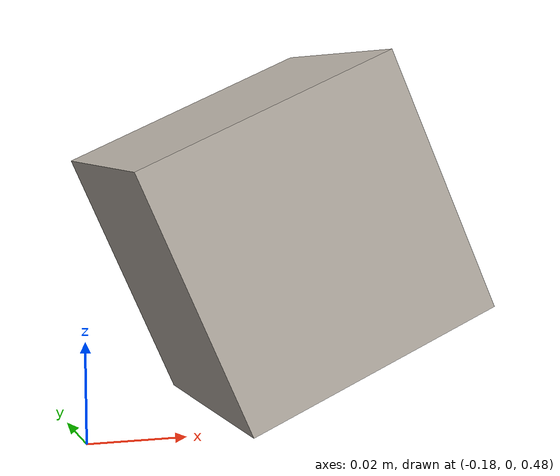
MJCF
<mujoco>

  <compiler assetdir=".."/>

  <default>
    <default class="cube">
      <geom friction=".3" conaffinity="2" condim="3" priority="0"
            solref="0.015 1.0" solimp="0.85 0.85 0.001"/>
    </default>
  </default>

  <asset>
    <texture name="cube" type="cube" fileup="textures/fileup.png"
      fileback="textures/fileback.png" filedown="textures/filedown.png"
      filefront="textures/filefront.png" fileleft="textures/fileleft.png"
      fileright="textures/fileright.png"/>
    <material name="cube" texture="cube"/>
    <texture name="graycube" type="cube" fileup="textures/grayup.png"
      fileback="textures/grayback.png" filedown="textures/graydown.png"
      filefront="textures/grayfront.png" fileleft="textures/grayleft.png"
      fileright="textures/grayright.png"/>
    <material name="graycube" texture="graycube"/>
    <texture name="dexcube" type="2d" file="textures/dex_cube.png"/>
    <material name="dexcube" texture="dexcube"/>
    <texture name="arucocube" type="cube"
      fileright="textures/RIGHT_purple.png" fileleft="textures/LEFT_blue.png"
      fileup="textures/TOP_red.png" filedown="textures/BOTTOM_cyan.png"
      filefront="textures/FRONT_green.png" fileback="textures/BACK_black.png"/>
    <material name="arucocube" texture="arucocube"/>
    <mesh name="cube_mesh" file="meshes/dex_cube.obj" scale="0.027 0.027 0.027"/>
  </asset>

  <worldbody>
    <body name="cube" pos="-0.1404 0.0042 0.52" quat="0.3894 -0.3796 -0.5980 -0.5888" childclass="cube">
      <freejoint name="cube_freejoint"/>
      <!-- Visual is a BOX (not the dex_cube mesh): a type="cube" texture maps by
           face direction and only renders correctly on a box; the dex_cube.obj
           mesh's 2D UVs scramble it. -->
      <geom name="cube_visual" type="box" size=".027 .027 .027" material="arucocube" contype="0" conaffinity="0" density="0" group="2"/>
      <geom name="cube" type="box" size=".027 .027 .027" mass=".120" group="3"/>
      <site name="cube_center" pos="0 0 0" group="4"/>
    </body>
  </worldbody>
</mujoco>
